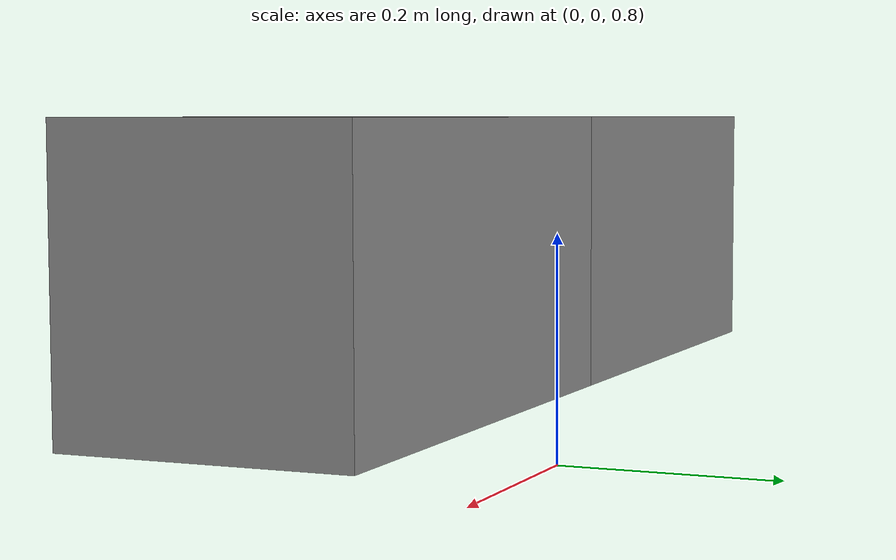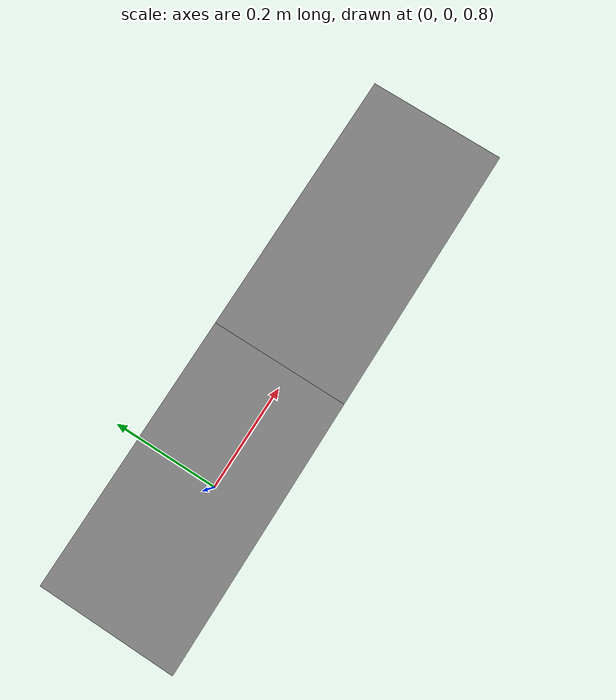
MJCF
<mujoco>
  <option timestep="0.001" gravity="0 0 -9.81"/>
  <worldbody>
    <body name="box1" pos="0 0 1">
      <freejoint/>
      <geom type="box" size=".2 .1 .1" mass="1"/>
    </body>
    <body name="box2" pos="0.4 0 1">
      <freejoint/>
      <geom type="box" size=".2 .1 .1" mass="1"/>
    </body>
  </worldbody>
  <equality>
    <connect body1="box1" body2="box2" anchor="0.2 0 0"/>
  </equality>
  <keyframe>
    <!-- qpos: pos1(3), quat1(4), pos2(3), quat2(4) -->
    <key qpos="0 0 1 1 0 0 0 0.4 0 1 1 0 0 0" qvel="1 2 3 0.1 0.2 0.3 -1 -2 -3 -0.1 -0.2 -0.3"/>
  </keyframe>
</mujoco>
